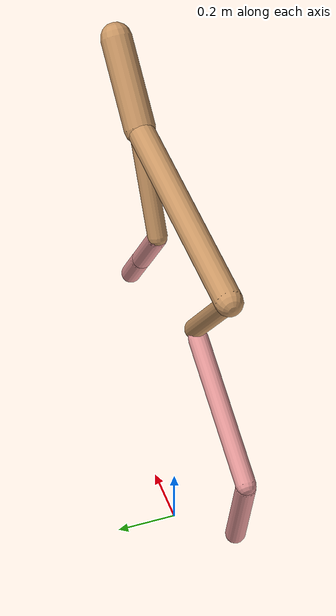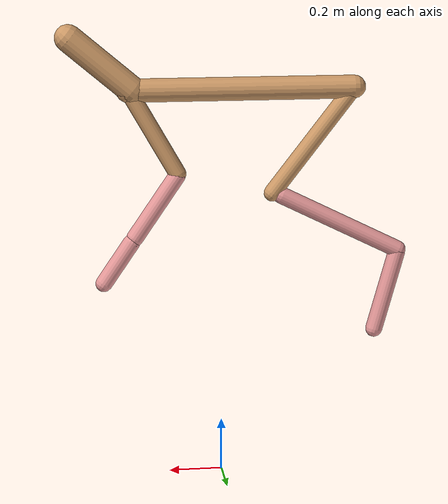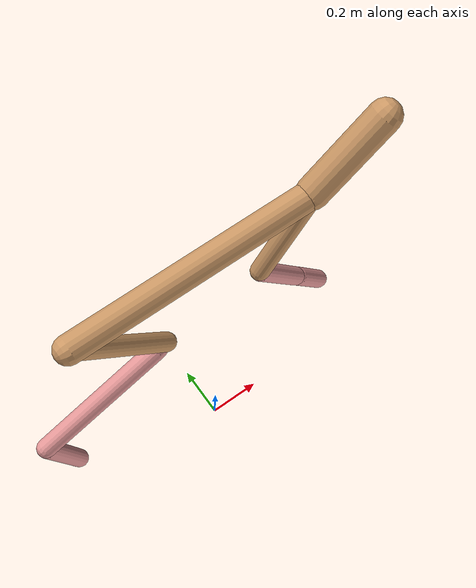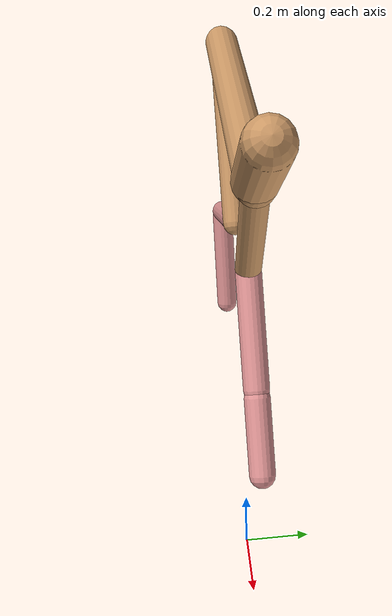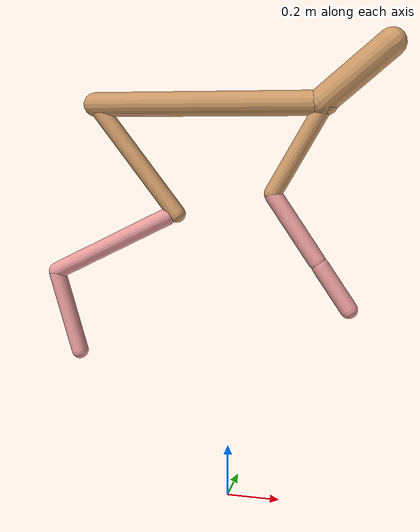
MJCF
<mujoco model="cheetah">
  <compiler angle="radian" coordinate="local" inertiafromgeom="true" settotalmass="14" />
  <default>
    <joint armature=".1" damping=".01" limited="true" solimplimit="0 .8 .03" solreflimit=".02 1" stiffness="8" />
    <geom conaffinity="0" condim="3" contype="1" friction="0.8 .1 .1" rgba="0.8 0.6 .4 1" solimp="0.0 0.8 0.01" solref="0.02 1" />
    <motor ctrllimited="true" ctrlrange="-1 1" />
  </default>
  <size nstack="300000" nuser_geom="1" />
  <option gravity="0 0 -9.81" timestep="0.01" />
  <worldbody>
    <body name="torso" pos="0.0 0.0 1.4792324774003698">
      <joint armature="0" axis="1 0 0" damping="0" limited="false" name="ignorex" pos="0 0 0" stiffness="0" type="slide" />
      <joint armature="0" axis="0 0 1" damping="0" limited="false" name="ignorez" pos="0 0 0" stiffness="0" type="slide" />
      <joint armature="0" axis="0 1 0" damping="0" limited="false" name="ignorey" pos="0 0 0" stiffness="0" type="hinge" />
      <geom fromto="-0.5 0.0 0.0 0.3439660648341188 0.0 0.0" name="torso" size="0.044131147802028536" type="capsule" />
      <geom axisangle="0 1 0 .87" name="head" pos="0.4439660648341187 0.0 0.1" size="0.051149708084547094 0.15" type="capsule" />

      <body name="bthigh" pos="-.5 0 0">
        <joint axis="0 1 0" damping="6" name="bthigh" pos="0 0 0" range="-.52 1.05" stiffness="240" type="hinge" />
        <geom axisangle="0 1 0 -3.8" name="bthigh" pos="0.15838172192187516 0.0 -0.2058962384984377" size="0.0322 0.24075314340936746" type="capsule" />
        <body name="bshin" pos="0.2767634438437503 0.0 -0.40179247699687537">
          <joint axis="0 1 0" damping="4.5" name="bshin" pos="0 0 0" range="-.785 .785" stiffness="180" type="hinge" />
          <geom axisangle="0 1 0 -2.03" name="bshin" pos="-0.2285974638852269 0.0 -0.11429873194261345" rgba="0.9 0.6 0.6 1" size="0.0322 0.24905497594072495" type="capsule" />
          <body name="bfoot" pos="-0.4571949277704538 0.0 -0.2285974638852269">
            <joint axis="0 1 0" damping="3" name="bfoot" pos="0 0 0" range="-.4 .785" stiffness="120" type="hinge" />
            <geom axisangle="0 1 0 -.27" name="bfoot" pos="0.04834112101169506 0.0 -0.15630295793781407" rgba="0.9 0.6 0.6 1" size="0.0322 0.156074451589521" type="capsule" />
            <inertial mass="10" />
          </body>
        </body>
      </body>
      <body name="fthigh" pos="0.34396606483411873 0.0 0.0">
        <joint axis="0 1 0" damping="4.5" name="fthigh" pos="0 0 0" range="-1.5 0.8" stiffness="180" type="hinge" />
        <geom axisangle="0 1 0 .52" name="fthigh" pos="-0.09321003757622216 0.0 -0.15978863584495226" size="0.0322 0.17906344957438453" type="capsule" />
        <body name="fshin" pos="-0.18642007515244433 0.0 -0.3195772716899045">
          <joint axis="0 1 0" damping="3" name="fshin" pos="0 0 0" range="-1.2 1.1" stiffness="120" type="hinge" />
          <geom axisangle="0 1 0 -.6" name="fshin" pos="0.08649465975901154 0.0 -0.11976183658940058" rgba="0.9 0.6 0.6 1" size="0.0322 0.14271222296905833" type="capsule" />
          <body name="ffoot" pos="0.17298931951802307 0.0 -0.23952367317880116">
            <joint axis="0 1 0" damping="1.5" name="ffoot" pos="0 0 0" range="-3.1 -0.3" stiffness="60" type="hinge" />
            <geom axisangle="0 1 0 -.6" name="ffoot" pos="0.05811008423128156 0.0 -0.09039346435977133" rgba="0.9 0.6 0.6 1" size="0.0322 0.09424392082862343" type="capsule" />
            <inertial mass="10" />
          </body>
        </body>
      </body>
    </body>
  </worldbody>
  <actuator>
    <motor gear="120" joint="bthigh" name="bthigh" />
    <motor gear="90" joint="bshin" name="bshin" />
    <motor gear="60" joint="bfoot" name="bfoot" />
    <motor gear="120" joint="fthigh" name="fthigh" />
    <motor gear="60" joint="fshin" name="fshin" />
    <motor gear="30" joint="ffoot" name="ffoot" />
  </actuator>
</mujoco>
